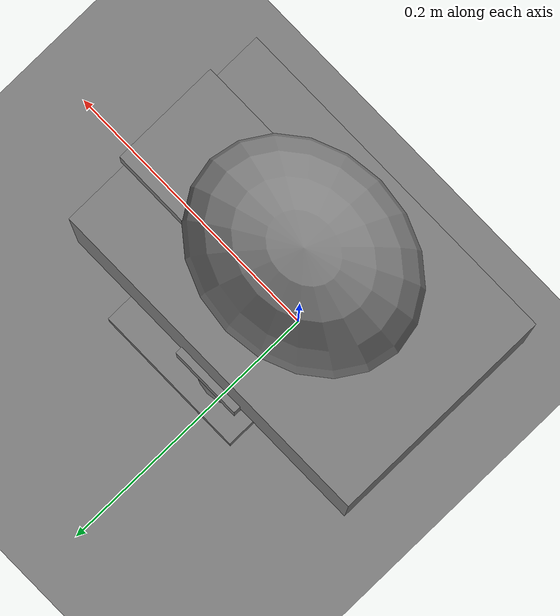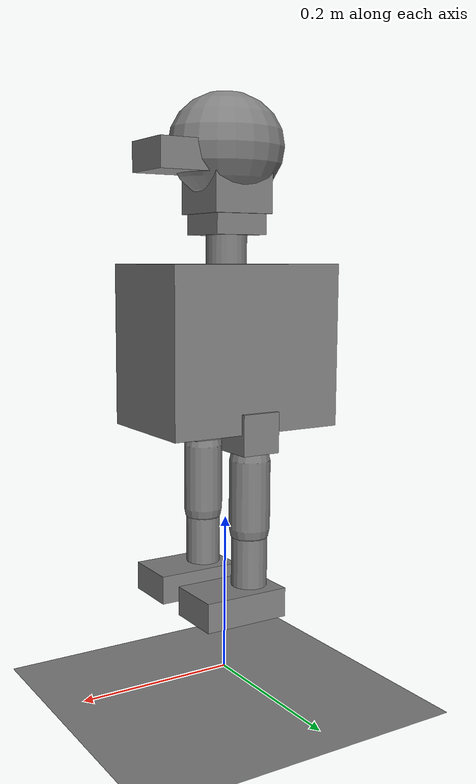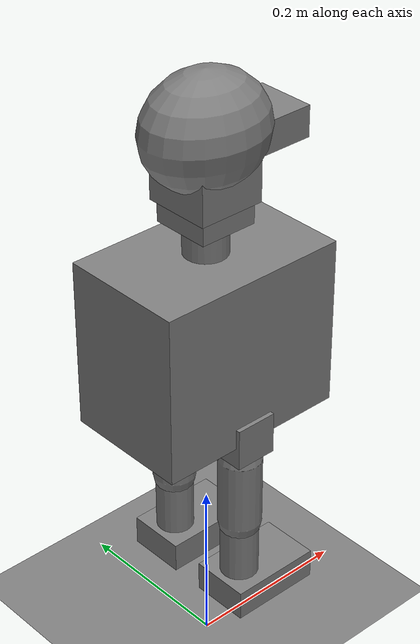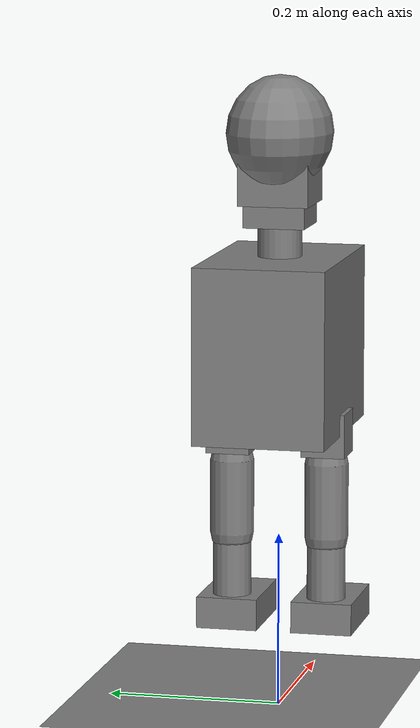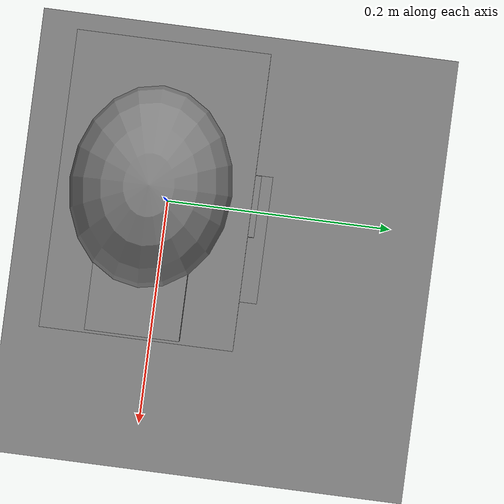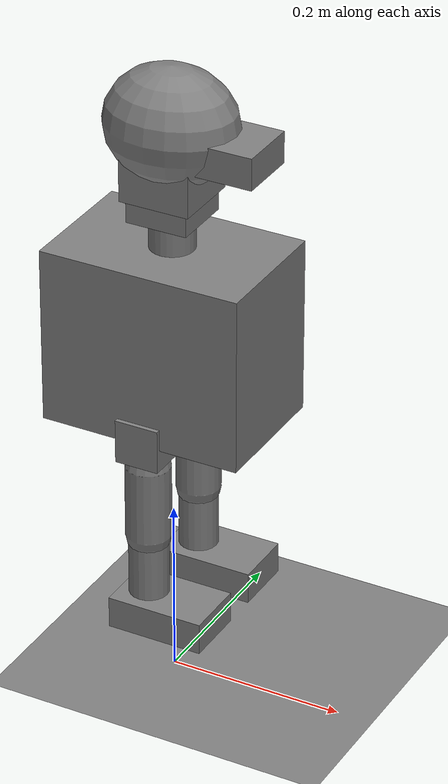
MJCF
<mujoco model="microduck_test">

    <compiler angle="radian" autolimits="true"/>

    <option
        timestep="0.002"
        gravity="0 0 -9.81"
        integrator="implicitfast"/>

    <default>

        <joint
            damping="0.15"
            armature="0.002"/>

        <geom
            condim="3"
            friction="1.0 0.5 0.5"/>

        <position
            kp="15"/>

    </default>

    <!-- WORLD                                                   -->

    <worldbody>

        <light
            pos="0 0 3"
            dir="0 0 -1"/>

        <geom
            name="floor"
            type="plane"
            size="5 5 0.1"/>

        <!-- MICRODUCK BODY                                     -->

        <body
            name="trunk"
            pos="0 0 0.42">

            <!-- Floating robot -->
            <freejoint name="root"/>

            <!-- Main body -->
            <geom
                name="trunk_collision"
                type="box"
                pos="0 0 0"
                size="0.115 0.075 0.10"
                mass="0.35"/>

            <!-- LEFT LEG                                         -->

            <body
                name="left_hip_yaw_link"
                pos="0 0.055 -0.075">

                <joint
                    name="left_hip_yaw"
                    type="hinge"
                    axis="0 0 1"
                    range="-0.4363 0.5236"/>

                <geom
                    type="cylinder"
                    axisangle="0 1 0 1.5708"
                    size="0.018 0.025"
                    mass="0.025"/>

                <body
                    name="left_hip_roll_link"
                    pos="0 0 -0.025">

                    <joint
                        name="left_hip_roll"
                        type="hinge"
                        axis="0 0 1"
                        range="-0.3840 0.3840"/>

                    <geom
                        type="box"
                        size="0.025 0.025 0.025"
                        mass="0.025"/>

                    <body
                        name="left_upper_leg"
                        pos="0 0 -0.035">

                        <joint
                            name="left_hip_pitch"
                            type="hinge"
                            axis="0 0 1"
                            range="-1.5708 1.5708"/>

                        <geom
                            type="capsule"
                            fromto="0 0 0 0 0 -0.085"
                            size="0.025"
                            mass="0.07"/>

                        <body
                            name="left_lower_leg"
                            pos="0 0 -0.085">

                            <joint
                                name="left_knee"
                                type="hinge"
                                axis="0 0 1"
                                range="-1.5708 1.5708"/>

                            <geom
                                type="capsule"
                                fromto="0 0 0 0 0 -0.075"
                                size="0.022"
                                mass="0.06"/>

                            <body
                                name="left_foot"
                                pos="0 0 -0.075">

                                <joint
                                    name="left_ankle"
                                    type="hinge"
                                    axis="0 0 1"
                                    range="-1.0 1.0"/>

                                <geom
                                    name="left_foot_geom"
                                    type="box"
                                    pos="0.025 0 -0.015"
                                    size="0.055 0.035 0.018"
                                    mass="0.05"/>

                            </body>

                        </body>

                    </body>

                </body>

            </body>

            <!-- RIGHT LEG                                        -->

            <body
                name="right_hip_yaw_link"
                pos="0 -0.055 -0.075">

                <joint
                    name="right_hip_yaw"
                    type="hinge"
                    axis="0 0 1"
                    range="-0.5236 0.4363"/>

                <geom
                    type="cylinder"
                    axisangle="0 1 0 1.5708"
                    size="0.018 0.025"
                    mass="0.025"/>

                <body
                    name="right_hip_roll_link"
                    pos="0 0 -0.025">

                    <joint
                        name="right_hip_roll"
                        type="hinge"
                        axis="0 0 1"
                        range="-0.3840 0.3840"/>

                    <geom
                        type="box"
                        size="0.025 0.025 0.025"
                        mass="0.025"/>

                    <body
                        name="right_upper_leg"
                        pos="0 0 -0.035">

                        <joint
                            name="right_hip_pitch"
                            type="hinge"
                            axis="0 0 1"
                            range="-1.5708 1.5708"/>

                        <geom
                            type="capsule"
                            fromto="0 0 0 0 0 -0.085"
                            size="0.025"
                            mass="0.07"/>

                        <body
                            name="right_lower_leg"
                            pos="0 0 -0.085">

                            <joint
                                name="right_knee"
                                type="hinge"
                                axis="0 0 1"
                                range="-1.5708 1.5708"/>

                            <geom
                                type="capsule"
                                fromto="0 0 0 0 0 -0.075"
                                size="0.022"
                                mass="0.06"/>

                            <body
                                name="right_foot"
                                pos="0 0 -0.075">

                                <joint
                                    name="right_ankle"
                                    type="hinge"
                                    axis="0 0 1"
                                    range="-1.0 1.0"/>

                                <geom
                                    name="right_foot_geom"
                                    type="box"
                                    pos="0.025 0 -0.015"
                                    size="0.055 0.035 0.018"
                                    mass="0.05"/>

                            </body>

                        </body>

                    </body>

                </body>

            </body>

            <!-- NECK                                               -->

            <body
                name="neck"
                pos="0 0 0.115">

                <joint
                    name="neck_pitch"
                    type="hinge"
                    axis="0 1 0"
                    range="-1.5708 1.0472"/>

                <geom
                    type="cylinder"
                    size="0.025 0.025"
                    mass="0.04"/>

                <!-- HEAD PITCH -->

                <body
                    name="head_pitch_link"
                    pos="0 0 0.045">

                    <joint
                        name="head_pitch"
                        type="hinge"
                        axis="0 1 0"
                        range="-1.5708 1.5708"/>

                    <geom
                        type="box"
                        size="0.035 0.035 0.025"
                        mass="0.02"/>

                    <!-- HEAD YAW -->

                    <body
                        name="head_yaw_link"
                        pos="0 0 0.035">

                        <joint
                            name="head_yaw"
                            type="hinge"
                            axis="0 0 1"
                            range="-1.2 1.2"/>

                        <geom
                            type="box"
                            size="0.04 0.04 0.035"
                            mass="0.035"/>

                        <!-- HEAD ROLL -->

                        <body
                            name="head_roll_link"
                            pos="0 0 0.045">

                            <joint
                                name="head_roll"
                                type="hinge"
                                axis="1 0 0"
                                range="-0.8 0.8"/>

                            <!-- Duck head -->
                            <geom
                                type="ellipsoid"
                                size="0.075 0.06 0.065"
                                mass="0.08"/>

                            <!-- Beak -->
                            <geom
                                type="box"
                                pos="0.065 0 -0.015"
                                size="0.045 0.035 0.018"
                                mass="0.015"/>

                        </body>

                    </body>

                </body>

            </body>

        </body>

    </worldbody>

    <!-- 14 MICRODUCK ACTUATORS                                -->

    <actuator>

        <!-- LEFT LEG -->

        <position
            name="left_hip_yaw_motor"
            joint="left_hip_yaw"
            kp="15"
            ctrlrange="-0.4363 0.5236"/>

        <position
            name="left_hip_roll_motor"
            joint="left_hip_roll"
            kp="15"
            ctrlrange="-0.3840 0.3840"/>

        <position
            name="left_hip_pitch_motor"
            joint="left_hip_pitch"
            kp="15"
            ctrlrange="-1.5708 1.5708"/>

        <position
            name="left_knee_motor"
            joint="left_knee"
            kp="15"
            ctrlrange="-1.5708 1.5708"/>

        <position
            name="left_ankle_motor"
            joint="left_ankle"
            kp="15"
            ctrlrange="-1.0 1.0"/>

        <!-- NECK / HEAD -->

        <position
            name="neck_pitch_motor"
            joint="neck_pitch"
            kp="10"
            ctrlrange="-1.5708 1.0472"/>

        <position
            name="head_pitch_motor"
            joint="head_pitch"
            kp="10"
            ctrlrange="-1.5708 1.5708"/>

        <position
            name="head_yaw_motor"
            joint="head_yaw"
            kp="10"
            ctrlrange="-1.2 1.2"/>

        <position
            name="head_roll_motor"
            joint="head_roll"
            kp="10"
            ctrlrange="-0.8 0.8"/>

        <!-- RIGHT LEG -->

        <position
            name="right_hip_yaw_motor"
            joint="right_hip_yaw"
            kp="15"
            ctrlrange="-0.5236 0.4363"/>

        <position
            name="right_hip_roll_motor"
            joint="right_hip_roll"
            kp="15"
            ctrlrange="-0.3840 0.3840"/>

        <position
            name="right_hip_pitch_motor"
            joint="right_hip_pitch"
            kp="15"
            ctrlrange="-1.5708 1.5708"/>

        <position
            name="right_knee_motor"
            joint="right_knee"
            kp="15"
            ctrlrange="-1.5708 1.5708"/>

        <position
            name="right_ankle_motor"
            joint="right_ankle"
            kp="15"
            ctrlrange="-1.0 1.0"/>

    </actuator>

</mujoco>
